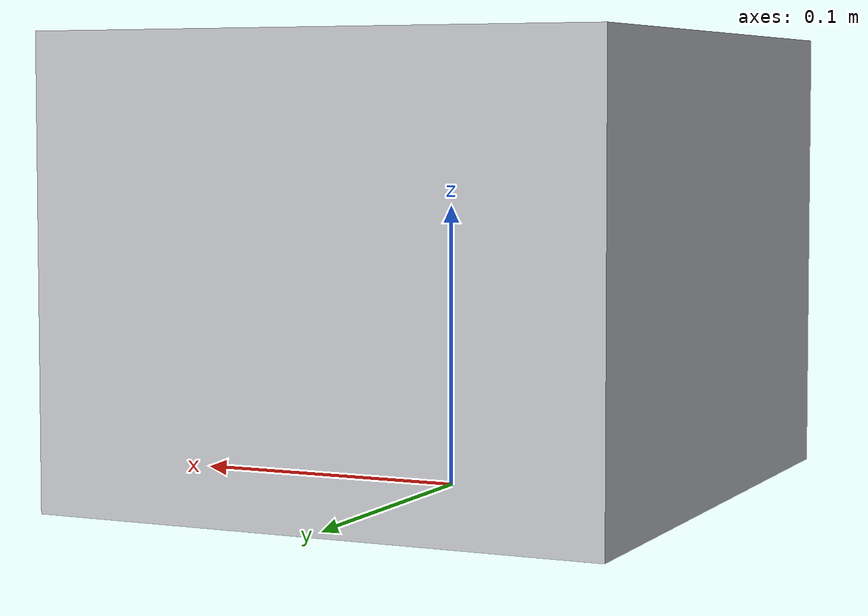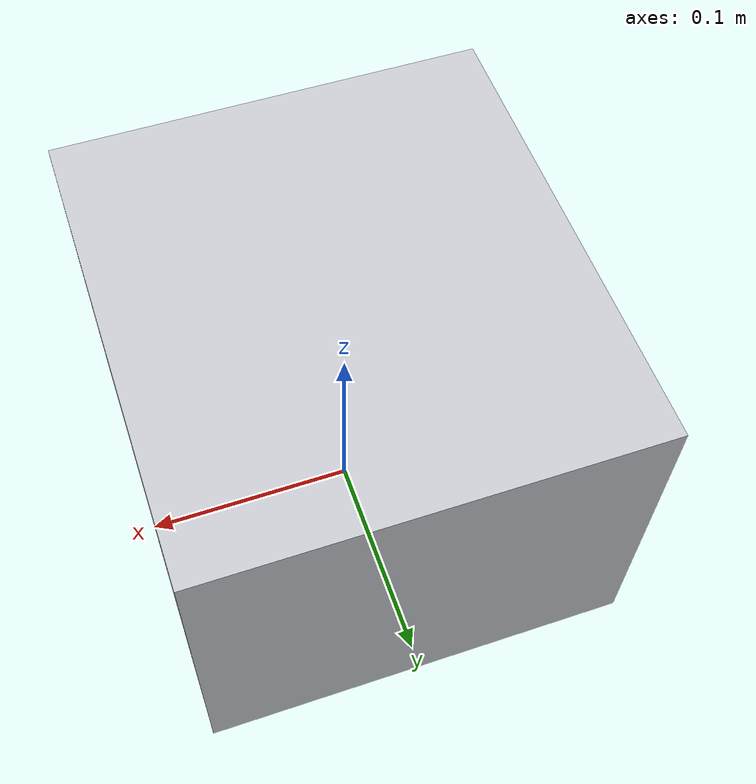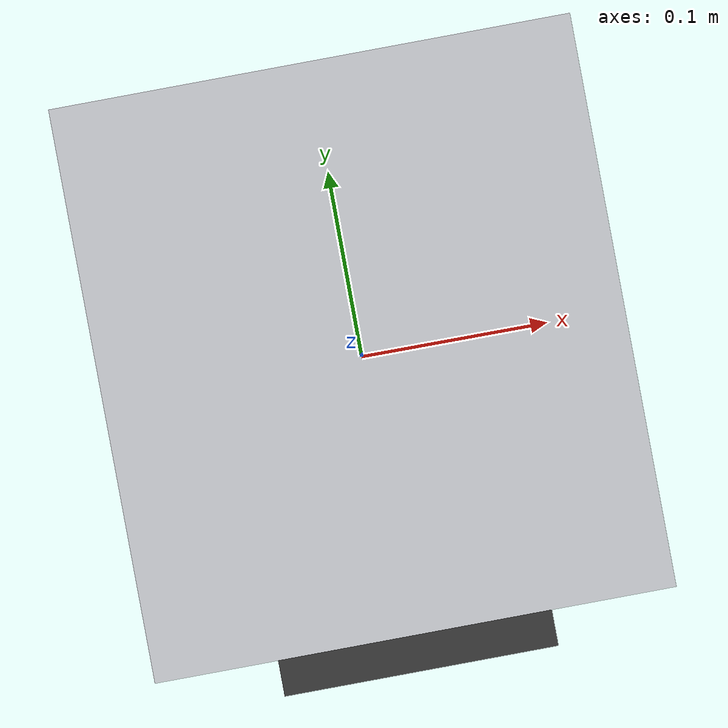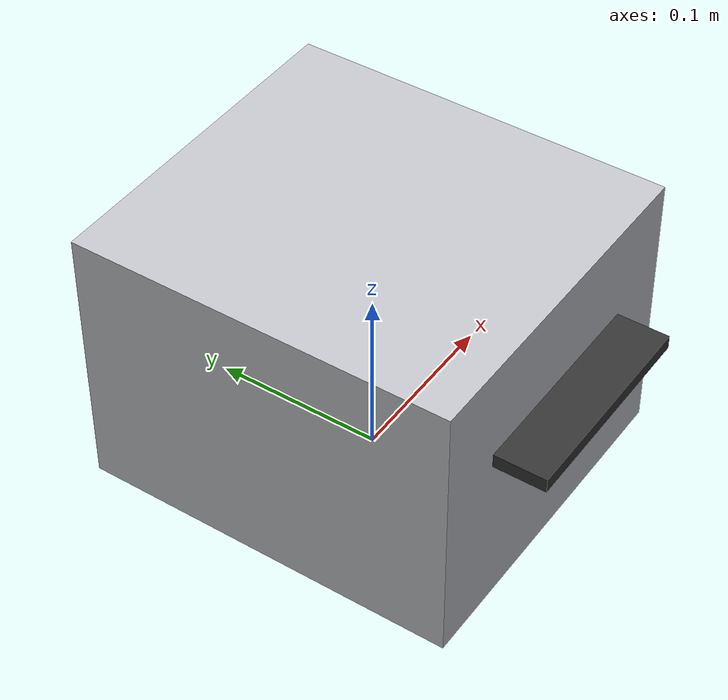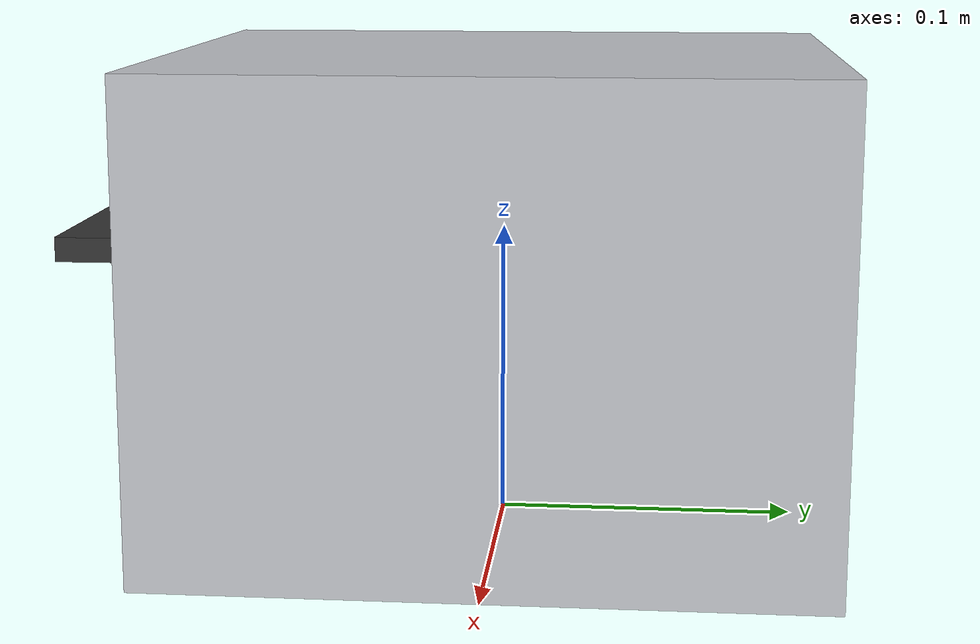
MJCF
<?xml version="1.0" encoding="utf-8"?>
<mujoco model="maldi_tof_analyzer">
  <compiler angle="radian" autolimits="true"/>
  <default>
    <default class="body"><geom contype="1" conaffinity="1"/></default>
  </default>
  <worldbody>
    <body name="base">
      <geom type="box" size="0.1 0.11 0.08" pos="0 0 0.08" rgba="0.75 0.76 0.78 1" class="body"/>
      <geom type="box" size="0.03 0.0055000000000000005 0.02" pos="-0.05 -0.099 0.12" rgba="0.6 0.9 0.9 0.7" class="body"/>
      <body name="sample_plate" pos="0 -0.11 0.10">
        <joint name="sample_plate_joint" type="slide" axis="0 1 0" range="0 0.08" damping="1.0" frictionloss="0.3"/>
  <geom type="box" size="0.06 0.03 0.004" pos="0 0 0" rgba="0.2 0.2 0.2 1" class="body"/>
      </body>
    </body>
  </worldbody>
</mujoco>
